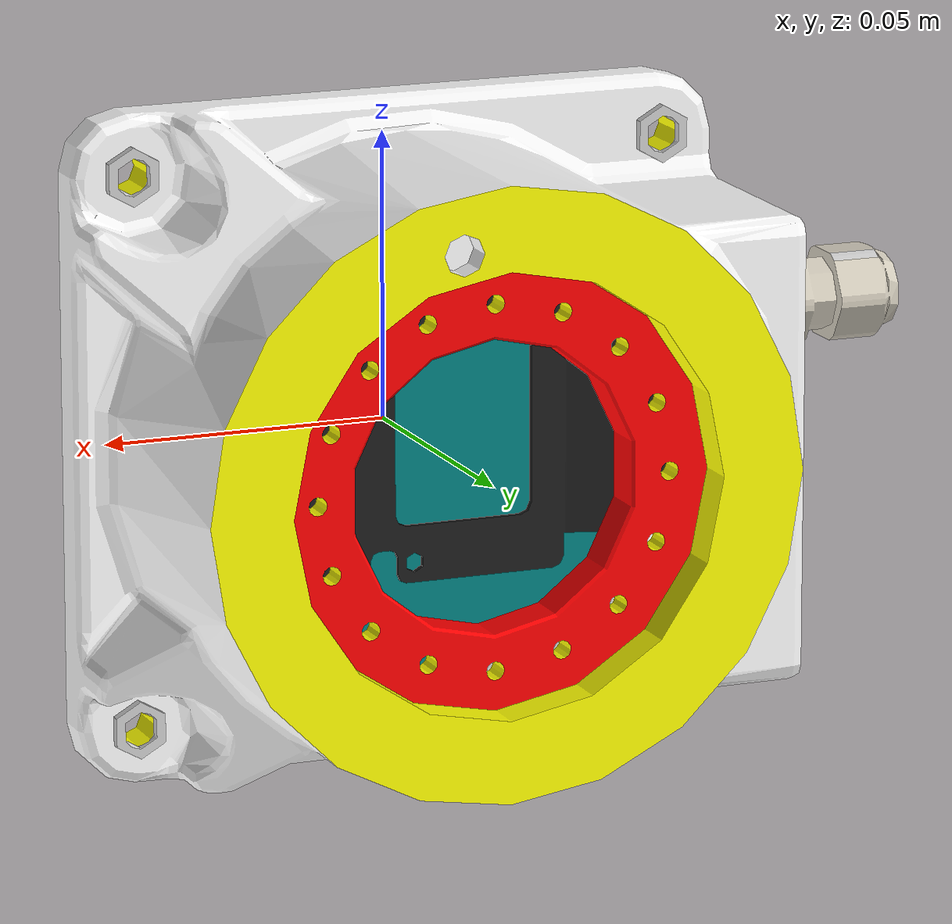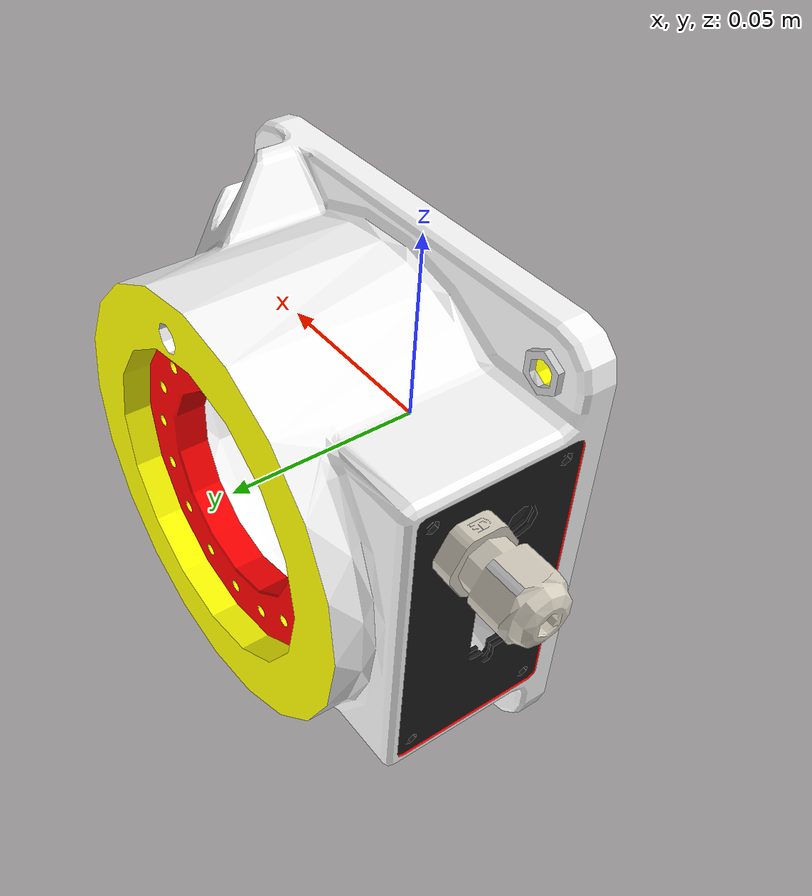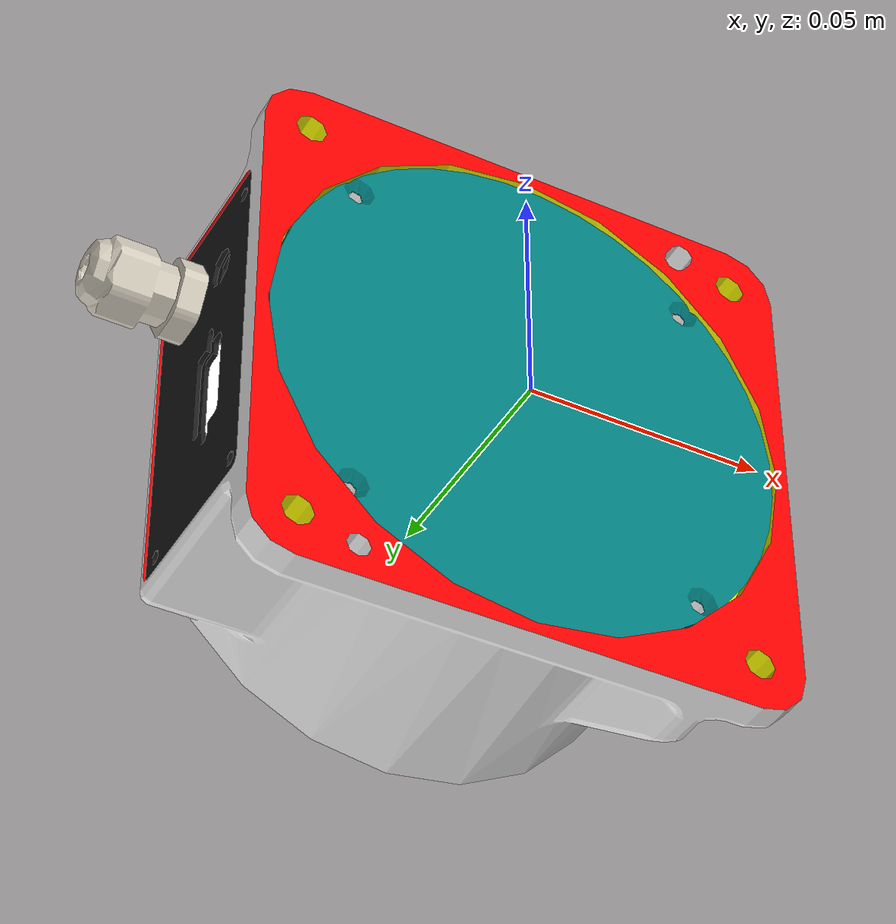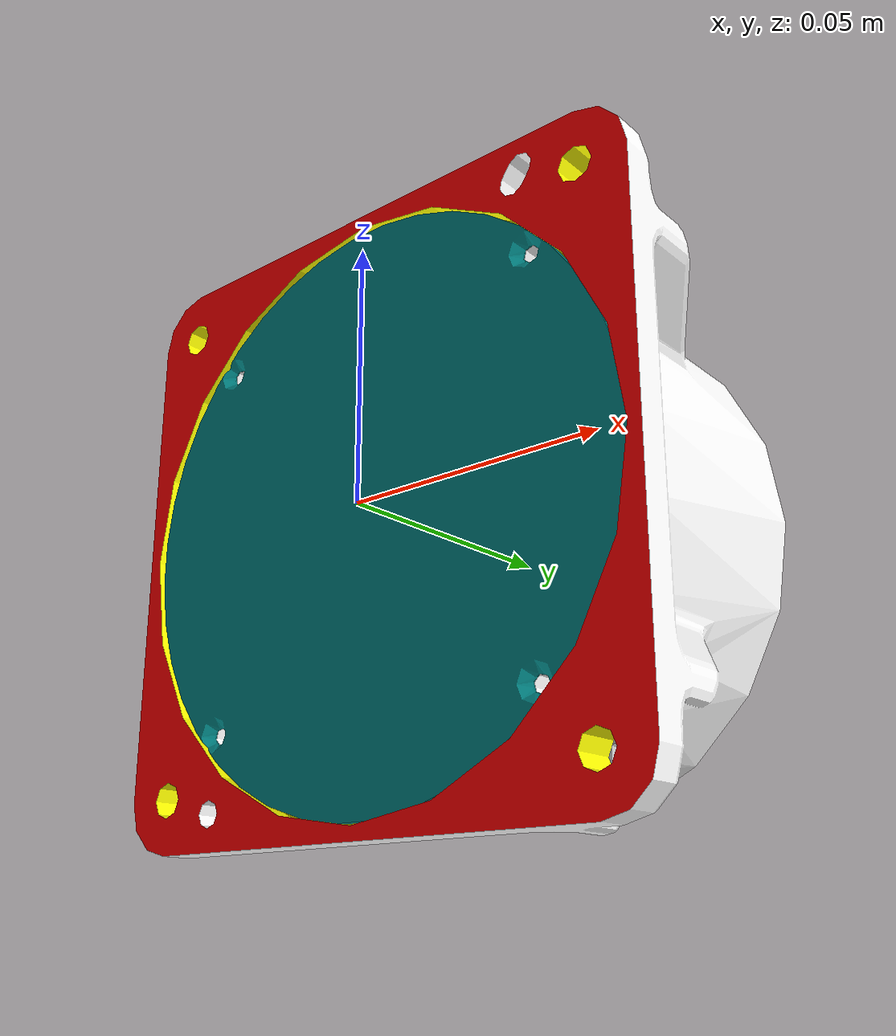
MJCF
<mujoco model="base_link">
  <default>
    <default class="visual">
      <geom group="2" type="mesh" contype="0" conaffinity="0"/>
    </default>
    <default class="collision">
      <geom group="3" type="mesh"/>
    </default>
  </default>
  <asset>
    <material name="DEFAULT_MTL.001" specular="0.0" shininess="0.25" rgba="0.800000 0.800000 0.800000 1.000000"/>
    <material name="MTL0.005" specular="0.0" shininess="0.25" rgba="1.000000 1.000000 0.000000 1.000000"/>
    <material name="MTL1.003" specular="0.0" shininess="0.25" rgba="1.000000 1.000000 1.000000 1.000000"/>
    <material name="MTL2.002" specular="0.0" shininess="0.25" rgba="1.000000 0.000000 0.000000 1.000000"/>
    <material name="MTL3.001" specular="0.0" shininess="0.25" rgba="0.000000 0.502000 0.502000 1.000000"/>
    <material name="MTL4.001" specular="0.0" shininess="0.25" rgba="0.110000 0.110000 0.110000 1.000000"/>
    <material name="MTL5.001" specular="0.0" shininess="0.25" rgba="0.843000 0.816000 0.753000 1.000000"/>
    <mesh file="base_link_0.obj"/>
    <mesh file="base_link_1.obj"/>
    <mesh file="base_link_2.obj"/>
    <mesh file="base_link_3.obj"/>
    <mesh file="base_link_4.obj"/>
    <mesh file="base_link_5.obj"/>
    <mesh file="base_link_6.obj"/>
  </asset>
  <worldbody>
    <body name="base_link">
      <geom mesh="base_link_0" material="DEFAULT_MTL.001" class="visual"/>
      <geom mesh="base_link_1" material="MTL5.001" class="visual"/>
      <geom mesh="base_link_2" material="MTL4.001" class="visual"/>
      <geom mesh="base_link_3" material="MTL3.001" class="visual"/>
      <geom mesh="base_link_4" material="MTL2.002" class="visual"/>
      <geom mesh="base_link_5" material="MTL1.003" class="visual"/>
      <geom mesh="base_link_6" material="MTL0.005" class="visual"/>
      <geom mesh="base_link_0" class="collision"/>
      <geom mesh="base_link_1" class="collision"/>
      <geom mesh="base_link_2" class="collision"/>
      <geom mesh="base_link_3" class="collision"/>
      <geom mesh="base_link_4" class="collision"/>
      <geom mesh="base_link_5" class="collision"/>
      <geom mesh="base_link_6" class="collision"/>
    </body>
  </worldbody>
</mujoco>
